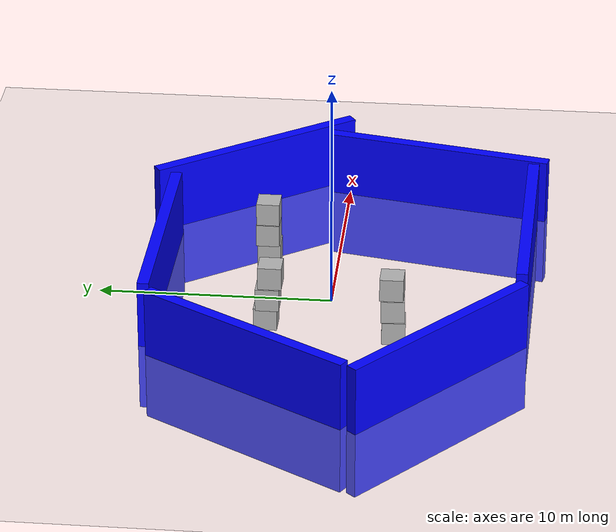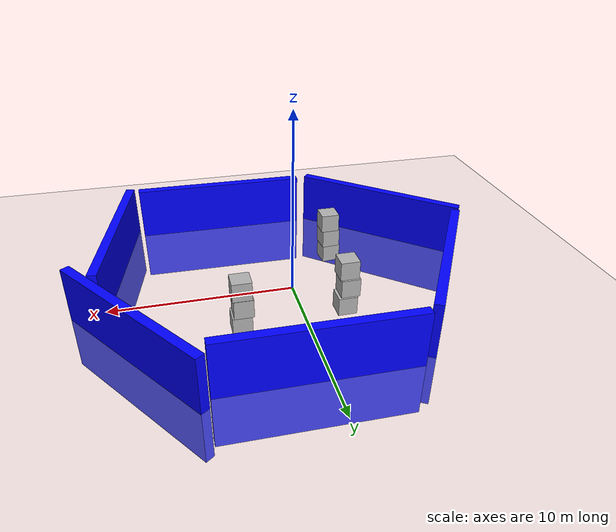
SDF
<sdf version='1.10'>
  <world name='empty'>
    <physics name='1ms' type='ode'>
      <max_step_size>0.001</max_step_size>
      <real_time_factor>1</real_time_factor>
      <real_time_update_rate>1000</real_time_update_rate>
    </physics>
    <plugin name='ignition::gazebo::systems::Physics' filename='ignition-gazebo-physics-system'/>
    <plugin name='ignition::gazebo::systems::UserCommands' filename='ignition-gazebo-user-commands-system'/>
    <plugin name='ignition::gazebo::systems::SceneBroadcaster' filename='ignition-gazebo-scene-broadcaster-system'/>
    <plugin name='gz::sim::systems::Contact' filename='gz-sim-contact-system'/>
    <spherical_coordinates>
      <surface_model>EARTH_WGS84</surface_model>
      <world_frame_orientation>ENU</world_frame_orientation>
      <latitude_deg>43.986687000000003</latitude_deg>
      <longitude_deg>8.2025009999999998</longitude_deg>
      <elevation>0</elevation>
      <heading_deg>0</heading_deg>
    </spherical_coordinates>
    <gravity>0 0 -9.8000000000000007</gravity>
    <magnetic_field>5.5644999999999998e-06 2.2875799999999999e-05 -4.2388400000000002e-05</magnetic_field>
    <atmosphere type='adiabatic'/>
    <scene>
      <ambient>0.400000006 0.400000006 0.400000006 1</ambient>
      <background>0.699999988 0.699999988 0.699999988 1</background>
      <shadows>true</shadows>
    </scene>
    <model name='ground_plane'>
      <static>true</static>
      <link name='link'>
        <collision name='collision'>
          <geometry>
            <plane>
              <normal>0 0 1</normal>
              <size>100 100</size>
            </plane>
          </geometry>
          <surface>
            <friction>
              <ode/>
            </friction>
            <bounce/>
            <contact/>
          </surface>
        </collision>
        <visual name='visual'>
          <geometry>
            <plane>
              <normal>0 0 1</normal>
              <size>100 100</size>
            </plane>
          </geometry>
          <material>
            <ambient>0.800000012 0.800000012 0.800000012 1</ambient>
            <diffuse>0.800000012 0.800000012 0.800000012 1</diffuse>
            <specular>0.800000012 0.800000012 0.800000012 1</specular>
          </material>
        </visual>
        <pose>0 0 0 0 0 0</pose>
        <inertial>
          <pose>0 0 0 0 0 0</pose>
          <mass>1</mass>
          <inertia>
            <ixx>1</ixx>
            <ixy>0</ixy>
            <ixz>0</ixz>
            <iyy>1</iyy>
            <iyz>0</iyz>
            <izz>1</izz>
          </inertia>
        </inertial>
        <enable_wind>false</enable_wind>
      </link>
      <pose>0 0 0 0 0 0</pose>
      <self_collide>false</self_collide>
    </model>
    <model name='box_2'>
      <pose>3.3250328459516569 3.013940649953383 2.4999998912854395 -0.0045260008829332435 -1.5707963267948966 0</pose>
      <link name='box_link'>
        <inertial>
          <inertia>
            <ixx>0.16666</ixx>
            <ixy>0</ixy>
            <ixz>0</ixz>
            <iyy>0.16666</iyy>
            <iyz>0</iyz>
            <izz>0.16666</izz>
          </inertia>
          <mass>1</mass>
          <pose>0 0 0 0 0 0</pose>
        </inertial>
        <collision name='box_collision'>
          <geometry>
            <box>
              <size>1 1 1</size>
            </box>
          </geometry>
          <surface>
            <friction>
              <ode/>
            </friction>
            <bounce/>
            <contact/>
          </surface>
        </collision>
        <visual name='box_visual'>
          <geometry>
            <box>
              <size>1 1 1</size>
            </box>
          </geometry>
          <material>
            <ambient>0.300000012 0.300000012 0.300000012 1</ambient>
            <diffuse>0.699999988 0.699999988 0.699999988 1</diffuse>
            <specular>1 1 1 1</specular>
          </material>
        </visual>
        <pose>0 0 0 0 0 0</pose>
        <enable_wind>false</enable_wind>
      </link>
      <static>false</static>
      <self_collide>false</self_collide>
    </model>
    <model name='box_6'>
      <pose>3.271762759533861 3.0266340973544645 1.4999999231808918 -6.8660325585892736e-09 -1.5640743732650593e-09 -0.0034432900440555152</pose>
      <link name='box_link'>
        <inertial>
          <inertia>
            <ixx>0.16666</ixx>
            <ixy>0</ixy>
            <ixz>0</ixz>
            <iyy>0.16666</iyy>
            <iyz>0</iyz>
            <izz>0.16666</izz>
          </inertia>
          <mass>1</mass>
          <pose>0 0 0 0 0 0</pose>
        </inertial>
        <collision name='box_collision'>
          <geometry>
            <box>
              <size>1 1 1</size>
            </box>
          </geometry>
          <surface>
            <friction>
              <ode/>
            </friction>
            <bounce/>
            <contact/>
          </surface>
        </collision>
        <visual name='box_visual'>
          <geometry>
            <box>
              <size>1 1 1</size>
            </box>
          </geometry>
          <material>
            <ambient>0.300000012 0.300000012 0.300000012 1</ambient>
            <diffuse>0.699999988 0.699999988 0.699999988 1</diffuse>
            <specular>1 1 1 1</specular>
          </material>
        </visual>
        <pose>0 0 0 0 0 0</pose>
        <enable_wind>false</enable_wind>
      </link>
      <static>false</static>
      <self_collide>false</self_collide>
    </model>

    <model name='box_8'>
      <pose>-2.3473199999999999 2.4699599999999999 1.4999899999999999 1.4994599999999995e-06 -1.8097499999999999e-06 2.3255e-07</pose>
      <link name='box_link'>
        <inertial>
          <inertia>
            <ixx>0.16666</ixx>
            <ixy>0</ixy>
            <ixz>0</ixz>
            <iyy>0.16666</iyy>
            <iyz>0</iyz>
            <izz>0.16666</izz>
          </inertia>
          <mass>1</mass>
          <pose>0 0 0 0 0 0</pose>
        </inertial>
        <collision name='box_collision'>
          <geometry>
            <box>
              <size>1 1 1</size>
            </box>
          </geometry>
          <surface>
            <friction>
              <ode/>
            </friction>
            <bounce/>
            <contact/>
          </surface>
        </collision>
        <visual name='box_visual'>
          <geometry>
            <box>
              <size>1 1 1</size>
            </box>
          </geometry>
          <material>
            <ambient>0.300000012 0.300000012 0.300000012 1</ambient>
            <diffuse>0.699999988 0.699999988 0.699999988 1</diffuse>
            <specular>1 1 1 1</specular>
          </material>
        </visual>
        <pose>0 0 0 0 0 0</pose>
        <enable_wind>false</enable_wind>
      </link>
      <static>false</static>
      <self_collide>false</self_collide>
    </model>

    <model name='box_15'>
      <pose>-2.7916799999999999 -2.7905500000000001 2.5 3.8159700000000003e-08 1.7668899999999999e-08 2.1265300000000001e-10</pose>
      <link name='box_link'>
        <inertial>
          <inertia>
            <ixx>0.16666</ixx>
            <ixy>0</ixy>
            <ixz>0</ixz>
            <iyy>0.16666</iyy>
            <iyz>0</iyz>
            <izz>0.16666</izz>
          </inertia>
          <mass>1</mass>
          <pose>0 0 0 0 0 0</pose>
        </inertial>
        <collision name='box_collision'>
          <geometry>
            <box>
              <size>1 1 1</size>
            </box>
          </geometry>
          <surface>
            <friction>
              <ode/>
            </friction>
            <bounce/>
            <contact/>
          </surface>
        </collision>
        <visual name='box_visual'>
          <geometry>
            <box>
              <size>1 1 1</size>
            </box>
          </geometry>
          <material>
            <ambient>0.300000012 0.300000012 0.300000012 1</ambient>
            <diffuse>0.699999988 0.699999988 0.699999988 1</diffuse>
            <specular>1 1 1 1</specular>
          </material>
        </visual>
        <pose>0 0 0 0 0 0</pose>
        <enable_wind>false</enable_wind>
      </link>
      <static>false</static>
      <self_collide>false</self_collide>
    </model>

    <model name='box_17'>
      <pose>3.36097 2.9794499999999999 0.50000199999999995 2.5971100000000008e-06 6.2318299999999998e-06 -1.2848599999999996e-05</pose>
      <link name='box_link'>
        <inertial>
          <inertia>
            <ixx>0.16666</ixx>
            <ixy>0</ixy>
            <ixz>0</ixz>
            <iyy>0.16666</iyy>
            <iyz>0</iyz>
            <izz>0.16666</izz>
          </inertia>
          <mass>1</mass>
          <pose>0 0 0 0 0 0</pose>
        </inertial>
        <collision name='box_collision'>
          <geometry>
            <box>
              <size>1 1 1</size>
            </box>
          </geometry>
          <surface>
            <friction>
              <ode/>
            </friction>
            <bounce/>
            <contact/>
          </surface>
        </collision>
        <visual name='box_visual'>
          <geometry>
            <box>
              <size>1 1 1</size>
            </box>
          </geometry>
          <material>
            <ambient>0.300000012 0.300000012 0.300000012 1</ambient>
            <diffuse>0.699999988 0.699999988 0.699999988 1</diffuse>
            <specular>1 1 1 1</specular>
          </material>
        </visual>
        <pose>0 0 0 0 0 0</pose>
        <enable_wind>false</enable_wind>
      </link>
      <static>false</static>
      <self_collide>false</self_collide>
    </model>
    <model name='box_18'>
      <pose>-2.1995399999999998 2.5728499999999999 0.49998999999999999 3.2551499999999999e-09 8.6613499999999997e-09 1.2093199999999996e-11</pose>
      <link name='box_link'>
        <inertial>
          <inertia>
            <ixx>0.16666</ixx>
            <ixy>0</ixy>
            <ixz>0</ixz>
            <iyy>0.16666</iyy>
            <iyz>0</iyz>
            <izz>0.16666</izz>
          </inertia>
          <mass>1</mass>
          <pose>0 0 0 0 0 0</pose>
        </inertial>
        <collision name='box_collision'>
          <geometry>
            <box>
              <size>1 1 1</size>
            </box>
          </geometry>
          <surface>
            <friction>
              <ode/>
            </friction>
            <bounce/>
            <contact/>
          </surface>
        </collision>
        <visual name='box_visual'>
          <geometry>
            <box>
              <size>1 1 1</size>
            </box>
          </geometry>
          <material>
            <ambient>0.300000012 0.300000012 0.300000012 1</ambient>
            <diffuse>0.699999988 0.699999988 0.699999988 1</diffuse>
            <specular>1 1 1 1</specular>
          </material>
        </visual>
        <pose>0 0 0 0 0 0</pose>
        <enable_wind>false</enable_wind>
      </link>
      <static>false</static>
      <self_collide>false</self_collide>
    </model>
    <model name='box_19'>
      <pose>-2.2839700000000001 2.3663099999999999 2.4999899999999999 5.0281900000000001e-08 2.1857700000000007e-08 1.0997499999999999e-06</pose>
      <link name='box_link'>
        <inertial>
          <inertia>
            <ixx>0.16666</ixx>
            <ixy>0</ixy>
            <ixz>0</ixz>
            <iyy>0.16666</iyy>
            <iyz>0</iyz>
            <izz>0.16666</izz>
          </inertia>
          <mass>1</mass>
          <pose>0 0 0 0 0 0</pose>
        </inertial>
        <collision name='box_collision'>
          <geometry>
            <box>
              <size>1 1 1</size>
            </box>
          </geometry>
          <surface>
            <friction>
              <ode/>
            </friction>
            <bounce/>
            <contact/>
          </surface>
        </collision>
        <visual name='box_visual'>
          <geometry>
            <box>
              <size>1 1 1</size>
            </box>
          </geometry>
          <material>
            <ambient>0.300000012 0.300000012 0.300000012 1</ambient>
            <diffuse>0.699999988 0.699999988 0.699999988 1</diffuse>
            <specular>1 1 1 1</specular>
          </material>
        </visual>
        <pose>0 0 0 0 0 0</pose>
        <enable_wind>false</enable_wind>
      </link>
      <static>false</static>
      <self_collide>false</self_collide>
    </model>
    <model name='box_20'>
      <pose>-2.8461099999999999 -2.8207599999999999 1.4999899999999999 1.3753499999999998e-08 -2.7194699999999997e-08 0.070376299999999975</pose>
      <link name='box_link'>
        <inertial>
          <inertia>
            <ixx>0.16666</ixx>
            <ixy>0</ixy>
            <ixz>0</ixz>
            <iyy>0.16666</iyy>
            <iyz>0</iyz>
            <izz>0.16666</izz>
          </inertia>
          <mass>1</mass>
          <pose>0 0 0 0 0 0</pose>
        </inertial>
        <collision name='box_collision'>
          <geometry>
            <box>
              <size>1 1 1</size>
            </box>
          </geometry>
          <surface>
            <friction>
              <ode/>
            </friction>
            <bounce/>
            <contact/>
          </surface>
        </collision>
        <visual name='box_visual'>
          <geometry>
            <box>
              <size>1 1 1</size>
            </box>
          </geometry>
          <material>
            <ambient>0.300000012 0.300000012 0.300000012 1</ambient>
            <diffuse>0.699999988 0.699999988 0.699999988 1</diffuse>
            <specular>1 1 1 1</specular>
          </material>
        </visual>
        <pose>0 0 0 0 0 0</pose>
        <enable_wind>false</enable_wind>
      </link>
      <static>false</static>
      <self_collide>false</self_collide>
    </model>

    <model name='wall0'>
      <static>true</static>
      <pose>-6.6733399999999996 -5.0008699999999999 0 0 0 0.85359499999999988</pose>
      <link name='box'>
        <visual name='visual'>
          <geometry>
            <box>
              <size>0.5 10 6</size>
            </box>
          </geometry>
          <material>
            <ambient>0 0 1 1</ambient>
            <diffuse>0 0 1 1</diffuse>
            <specular>0 0 1 1</specular>
          </material>
        </visual>
        <collision name='collision'>
          <geometry>
            <box>
              <size>0.5 10 6</size>
            </box>
          </geometry>
          <surface>
            <friction>
              <ode/>
            </friction>
            <bounce/>
            <contact/>
          </surface>
        </collision>
        <pose>0 0 0 0 0 0</pose>
        <inertial>
          <pose>0 0 0 0 0 0</pose>
          <mass>1</mass>
          <inertia>
            <ixx>1</ixx>
            <ixy>0</ixy>
            <ixz>0</ixz>
            <iyy>1</iyy>
            <iyz>0</iyz>
            <izz>1</izz>
          </inertia>
        </inertial>
        <enable_wind>false</enable_wind>
      </link>
      <self_collide>false</self_collide>
    </model>
    <model name='wall1'>
      <static>true</static>
      <pose>8.6746200000000009 4.1576199999999996 0 0 0 0.61351800000000001</pose>
      <link name='box'>
        <visual name='visual'>
          <geometry>
            <box>
              <size>0.5 10 6</size>
            </box>
          </geometry>
          <material>
            <ambient>0 0 1 1</ambient>
            <diffuse>0 0 1 1</diffuse>
            <specular>0 0 1 1</specular>
          </material>
        </visual>
        <collision name='collision'>
          <geometry>
            <box>
              <size>0.5 10 6</size>
            </box>
          </geometry>
          <surface>
            <friction>
              <ode/>
            </friction>
            <bounce/>
            <contact/>
          </surface>
        </collision>
        <pose>0 0 0 0 0 0</pose>
        <inertial>
          <pose>0 0 0 0 0 0</pose>
          <mass>1</mass>
          <inertia>
            <ixx>1</ixx>
            <ixy>0</ixy>
            <ixz>0</ixz>
            <iyy>1</iyy>
            <iyz>0</iyz>
            <izz>1</izz>
          </inertia>
        </inertial>
        <enable_wind>false</enable_wind>
      </link>
      <self_collide>false</self_collide>
    </model>
    <model name='wall2'>
      <static>true</static>
      <pose>-7.5235700000000003 2.89472 0 0 0 -0.53716300000000006</pose>
      <link name='box'>
        <visual name='visual'>
          <geometry>
            <box>
              <size>0.5 10 6</size>
            </box>
          </geometry>
          <material>
            <ambient>0 0 1 1</ambient>
            <diffuse>0 0 1 1</diffuse>
            <specular>0 0 1 1</specular>
          </material>
        </visual>
        <collision name='collision'>
          <geometry>
            <box>
              <size>0.5 10 6</size>
            </box>
          </geometry>
          <surface>
            <friction>
              <ode/>
            </friction>
            <bounce/>
            <contact/>
          </surface>
        </collision>
        <pose>0 0 0 0 0 0</pose>
        <inertial>
          <pose>0 0 0 0 0 0</pose>
          <mass>1</mass>
          <inertia>
            <ixx>1</ixx>
            <ixy>0</ixy>
            <ixz>0</ixz>
            <iyy>1</iyy>
            <iyz>0</iyz>
            <izz>1</izz>
          </inertia>
        </inertial>
        <enable_wind>false</enable_wind>
      </link>
      <self_collide>false</self_collide>
    </model>
    <model name='wall3'>
      <static>true</static>
      <pose>9.2864199999999997 -4.00129 -0.11633499999999999 0 0 -0.19820099999999999</pose>
      <link name='box'>
        <visual name='visual'>
          <geometry>
            <box>
              <size>0.5 10 6</size>
            </box>
          </geometry>
          <material>
            <ambient>0 0 1 1</ambient>
            <diffuse>0 0 1 1</diffuse>
            <specular>0 0 1 1</specular>
          </material>
        </visual>
        <collision name='collision'>
          <geometry>
            <box>
              <size>0.5 10 6</size>
            </box>
          </geometry>
          <surface>
            <friction>
              <ode/>
            </friction>
            <bounce/>
            <contact/>
          </surface>
        </collision>
        <pose>0 0 0 0 0 0</pose>
        <inertial>
          <pose>0 0 0 0 0 0</pose>
          <mass>1</mass>
          <inertia>
            <ixx>1</ixx>
            <ixy>0</ixy>
            <ixz>0</ixz>
            <iyy>1</iyy>
            <iyz>0</iyz>
            <izz>1</izz>
          </inertia>
        </inertial>
        <enable_wind>false</enable_wind>
      </link>
      <self_collide>false</self_collide>
    </model>
    <model name='wall4'>
      <static>true</static>
      <pose>2.77765 -8.2202300000000008 0 0 0 1.5584100000000001</pose>
      <link name='box'>
        <visual name='visual'>
          <geometry>
            <box>
              <size>0.5 10 6</size>
            </box>
          </geometry>
          <material>
            <ambient>0 0 1 1</ambient>
            <diffuse>0 0 1 1</diffuse>
            <specular>0 0 1 1</specular>
          </material>
        </visual>
        <collision name='collision'>
          <geometry>
            <box>
              <size>0.5 10 6</size>
            </box>
          </geometry>
          <surface>
            <friction>
              <ode/>
            </friction>
            <bounce/>
            <contact/>
          </surface>
        </collision>
        <pose>0 0 0 0 0 0</pose>
        <inertial>
          <pose>0 0 0 0 0 0</pose>
          <mass>1</mass>
          <inertia>
            <ixx>1</ixx>
            <ixy>0</ixy>
            <ixz>0</ixz>
            <iyy>1</iyy>
            <iyz>0</iyz>
            <izz>1</izz>
          </inertia>
        </inertial>
        <enable_wind>false</enable_wind>
      </link>
      <self_collide>false</self_collide>
    </model>
    <model name='wall5'>
      <static>true</static>
      <pose>0.49758400000000003 7.3953300000000004 0 0 0 1.5584100000000001</pose>
      <link name='box'>
        <visual name='visual'>
          <geometry>
            <box>
              <size>0.5 10 6</size>
            </box>
          </geometry>
          <material>
            <ambient>0 0 1 1</ambient>
            <diffuse>0 0 1 1</diffuse>
            <specular>0 0 1 1</specular>
          </material>
        </visual>
        <collision name='collision'>
          <geometry>
            <box>
              <size>0.5 10 6</size>
            </box>
          </geometry>
          <surface>
            <friction>
              <ode/>
            </friction>
            <bounce/>
            <contact/>
          </surface>
        </collision>
        <pose>0 0 0 0 0 0</pose>
        <inertial>
          <pose>0 0 0 0 0 0</pose>
          <mass>1</mass>
          <inertia>
            <ixx>1</ixx>
            <ixy>0</ixy>
            <ixz>0</ixz>
            <iyy>1</iyy>
            <iyz>0</iyz>
            <izz>1</izz>
          </inertia>
        </inertial>
        <enable_wind>false</enable_wind>
      </link>
      <self_collide>false</self_collide>
    </model>
    <model name='box_23'>
      <pose>-2.8950300000000002 -2.8682099999999999 0.499996 7.9922100000000017e-07 1.62962e-06 0.070376300000000003</pose>
      <link name='box_link'>
        <inertial>
          <inertia>
            <ixx>0.16666</ixx>
            <ixy>0</ixy>
            <ixz>0</ixz>
            <iyy>0.16666</iyy>
            <iyz>0</iyz>
            <izz>0.16666</izz>
          </inertia>
          <mass>1</mass>
          <pose>0 0 0 0 0 0</pose>
        </inertial>
        <collision name='box_collision'>
          <geometry>
            <box>
              <size>1 1 1</size>
            </box>
          </geometry>
          <surface>
            <friction>
              <ode/>
            </friction>
            <bounce/>
            <contact/>
          </surface>
        </collision>
        <visual name='box_visual'>
          <geometry>
            <box>
              <size>1 1 1</size>
            </box>
          </geometry>
          <material>
            <ambient>0.300000012 0.300000012 0.300000012 1</ambient>
            <diffuse>0.699999988 0.699999988 0.699999988 1</diffuse>
            <specular>1 1 1 1</specular>
          </material>
        </visual>
        <pose>0 0 0 0 0 0</pose>
        <enable_wind>false</enable_wind>
      </link>
      <static>false</static>
      <self_collide>false</self_collide>

    </model>

    <light name='sun' type='directional'>
      <pose>0 0 10 0 0 0</pose>
      <cast_shadows>true</cast_shadows>
      <intensity>1</intensity>
      <direction>-0.5 0.10000000000000001 -0.90000000000000002</direction>
      <diffuse>1 1 1 1</diffuse>
      <specular>0.5 0.5 0.5 1</specular>
      <attenuation>
        <range>1000</range>
        <linear>0.0099999997764825821</linear>
        <constant>0.89999997615814209</constant>
        <quadratic>0.0010000000474974513</quadratic>
      </attenuation>
      <spot>
        <inner_angle>0</inner_angle>
        <outer_angle>0</outer_angle>
        <falloff>0</falloff>
      </spot>
    </light>
  </world>
</sdf>
